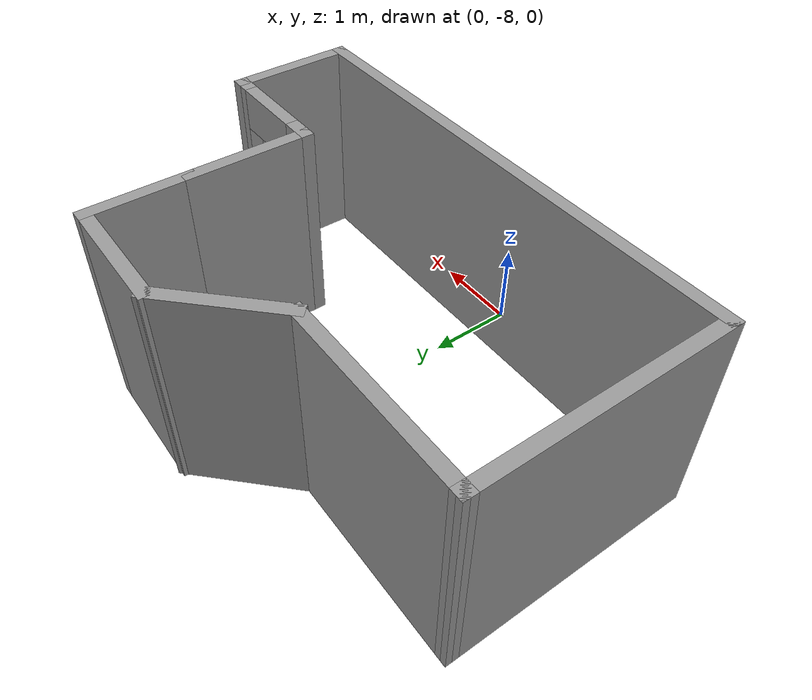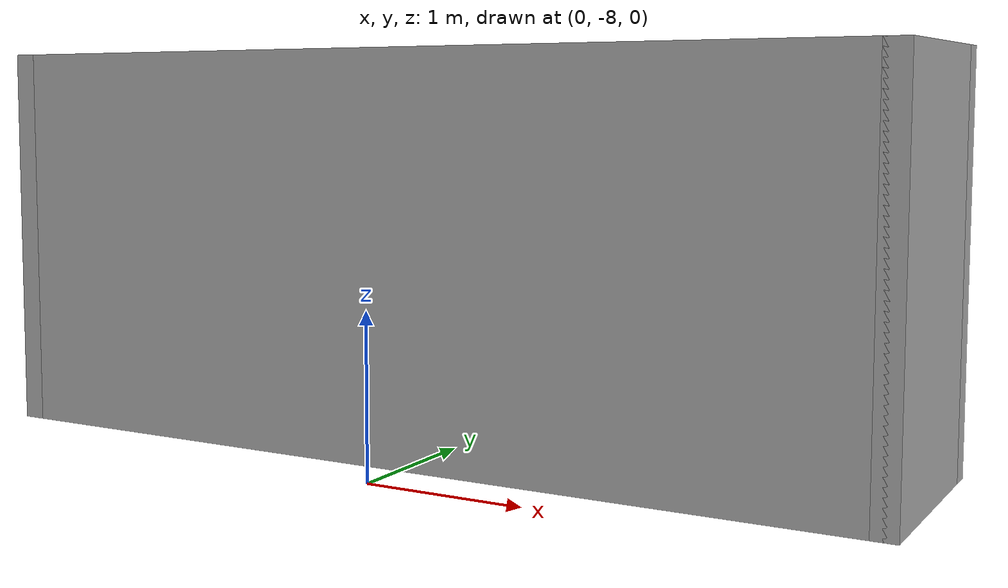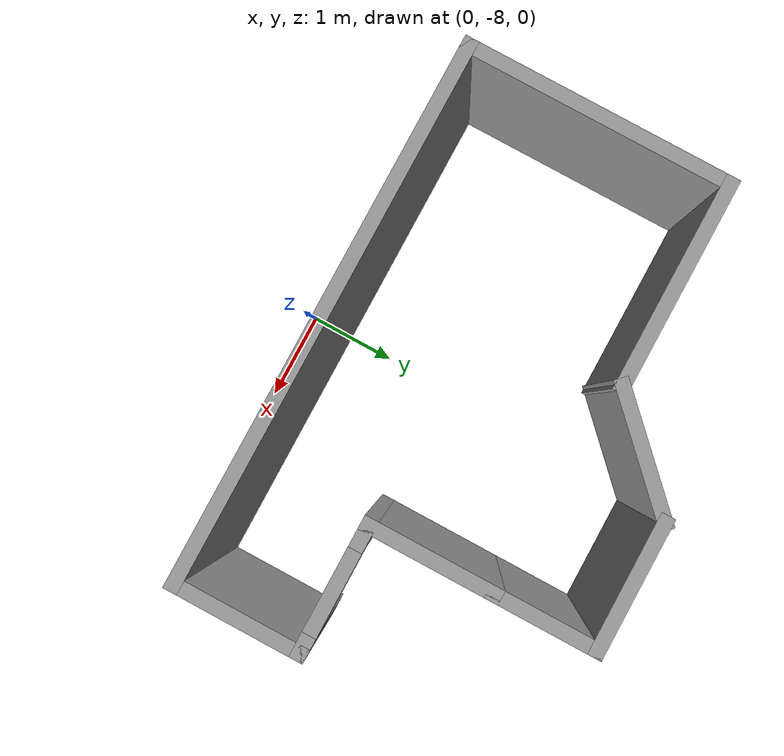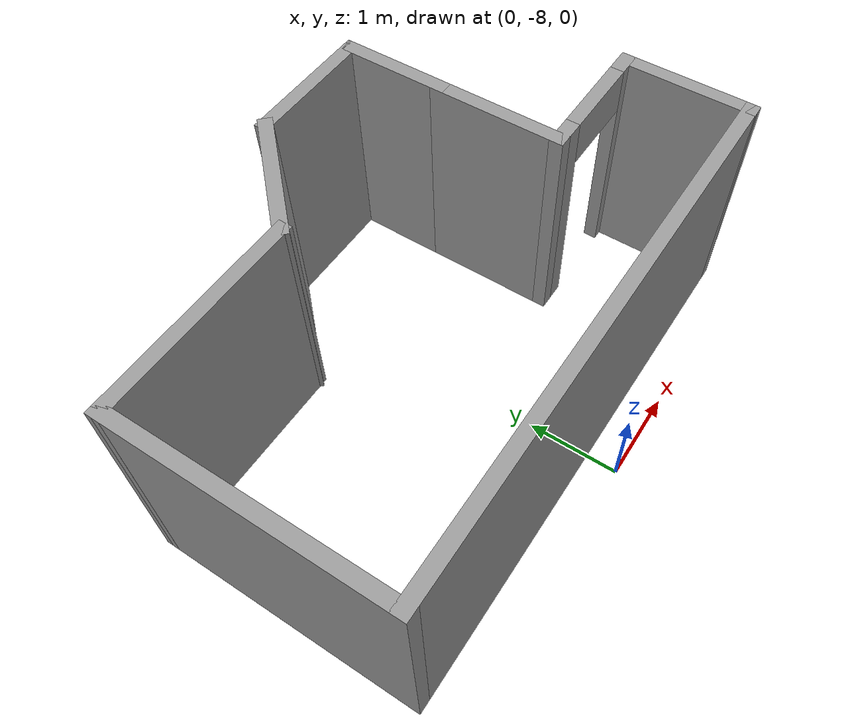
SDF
<?xml version='1.0'?>
<sdf version='1.6'>
  <model name='OddRoom-1door'>
    <pose frame=''>-0.068161 -5.67621 0 0 -0 0</pose>
    <link name='Wall_22'>
      <collision name='Wall_22_Collision'>
        <geometry>
          <box>
            <size>3 0.15 2.5</size>
          </box>
        </geometry>
        <pose frame=''>0 0 1.25 0 -0 0</pose>
      </collision>
      <visual name='Wall_22_Visual'>
        <pose frame=''>0 0 1.25 0 -0 0</pose>
        <geometry>
          <box>
            <size>3 0.15 2.5</size>
          </box>
        </geometry>
        <material>
          <script>
            <uri>file://media/materials/scripts/gazebo.material</uri>
            <name>Gazebo/Grey</name>
          </script>
          <ambient>1 1 1 1</ambient>
        </material>
        <meta>
          <layer>0</layer>
        </meta>
      </visual>
      <pose frame=''>-2.92492 -0.490533 0 0 -0 -1.5708</pose>
    </link>
    <link name='Wall_23'>
      <collision name='Wall_23_Collision'>
        <geometry>
          <box>
            <size>6 0.15 2.5</size>
          </box>
        </geometry>
        <pose frame=''>0 0 1.25 0 -0 0</pose>
      </collision>
      <visual name='Wall_23_Visual'>
        <pose frame=''>0 0 1.25 0 -0 0</pose>
        <geometry>
          <box>
            <size>6 0.15 2.5</size>
          </box>
        </geometry>
        <material>
          <script>
            <uri>file://media/materials/scripts/gazebo.material</uri>
            <name>Gazebo/Grey</name>
          </script>
          <ambient>1 1 1 1</ambient>
        </material>
        <meta>
          <layer>0</layer>
        </meta>
      </visual>
      <pose frame=''>7.8e-05 -1.91553 0 0 -0 0</pose>
    </link>
    <link name='Wall_24'>
      <collision name='Wall_24_Collision'>
        <geometry>
          <box>
            <size>1.5 0.15 2.5</size>
          </box>
        </geometry>
        <pose frame=''>0 0 1.25 0 -0 0</pose>
      </collision>
      <visual name='Wall_24_Visual'>
        <pose frame=''>0 0 1.25 0 -0 0</pose>
        <geometry>
          <box>
            <size>1.5 0.15 2.5</size>
          </box>
        </geometry>
        <material>
          <script>
            <uri>file://media/materials/scripts/gazebo.material</uri>
            <name>Gazebo/Grey</name>
          </script>
          <ambient>1 1 1 1</ambient>
        </material>
        <meta>
          <layer>0</layer>
        </meta>
      </visual>
      <pose frame=''>2.92508 -1.24053 0 0 -0 1.5708</pose>
    </link>
    <link name='Wall_25'>
      <pose frame=''>2.25008 -0.565533 0 0 -0 3.14159</pose>
      <visual name='Wall_25_Visual_0'>
        <pose frame=''>-0.618519 0 1.25 0 -0 0</pose>
        <geometry>
          <box>
            <size>0.262961 0.15 2.5</size>
          </box>
        </geometry>
        <material>
          <script>
            <uri>file://media/materials/scripts/gazebo.material</uri>
            <name>Gazebo/Grey</name>
          </script>
          <ambient>1 1 1 1</ambient>
        </material>
        <meta>
          <layer>0</layer>
        </meta>
      </visual>
      <collision name='Wall_25_Collision_0'>
        <geometry>
          <box>
            <size>0.262961 0.15 2.5</size>
          </box>
        </geometry>
        <pose frame=''>-0.618519 0 1.25 0 -0 0</pose>
      </collision>
      <visual name='Wall_25_Visual_1'>
        <pose frame=''>0.581481 0 1.25 0 -0 0</pose>
        <geometry>
          <box>
            <size>0.337039 0.15 2.5</size>
          </box>
        </geometry>
        <material>
          <script>
            <uri>file://media/materials/scripts/gazebo.material</uri>
            <name>Gazebo/Grey</name>
          </script>
          <ambient>1 1 1 1</ambient>
        </material>
        <meta>
          <layer>0</layer>
        </meta>
      </visual>
      <collision name='Wall_25_Collision_1'>
        <geometry>
          <box>
            <size>0.337039 0.15 2.5</size>
          </box>
        </geometry>
        <pose frame=''>0.581481 0 1.25 0 -0 0</pose>
      </collision>
      <visual name='Wall_25_Visual_2'>
        <pose frame=''>-0.037039 0 2.25 0 -0 0</pose>
        <geometry>
          <box>
            <size>0.9 0.15 0.5</size>
          </box>
        </geometry>
        <material>
          <script>
            <uri>file://media/materials/scripts/gazebo.material</uri>
            <name>Gazebo/Grey</name>
          </script>
          <ambient>1 1 1 1</ambient>
        </material>
        <meta>
          <layer>0</layer>
        </meta>
      </visual>
      <collision name='Wall_25_Collision_2'>
        <geometry>
          <box>
            <size>0.9 0.15 0.5</size>
          </box>
        </geometry>
        <pose frame=''>-0.037039 0 2.25 0 -0 0</pose>
      </collision>
    </link>
    <link name='Wall_26'>
      <collision name='Wall_26_Collision'>
        <geometry>
          <box>
            <size>1.5 0.15 2.5</size>
          </box>
        </geometry>
        <pose frame=''>0 0 1.25 0 -0 0</pose>
      </collision>
      <visual name='Wall_26_Visual'>
        <pose frame=''>0 0 1.25 0 -0 0</pose>
        <geometry>
          <box>
            <size>1.5 0.15 2.5</size>
          </box>
        </geometry>
        <material>
          <script>
            <uri>file://media/materials/scripts/gazebo.material</uri>
            <name>Gazebo/Grey</name>
          </script>
          <ambient>1 1 1 1</ambient>
        </material>
        <meta>
          <layer>0</layer>
        </meta>
      </visual>
      <pose frame=''>1.57508 0.109467 0 0 -0 1.5708</pose>
    </link>
    <link name='Wall_27'>
      <collision name='Wall_27_Collision'>
        <geometry>
          <box>
            <size>1.25 0.15 2.5</size>
          </box>
        </geometry>
        <pose frame=''>0 0 1.25 0 -0 0</pose>
      </collision>
      <visual name='Wall_27_Visual'>
        <pose frame=''>0 0 1.25 0 -0 0</pose>
        <geometry>
          <box>
            <size>1.25 0.15 2.5</size>
          </box>
        </geometry>
        <material>
          <script>
            <uri>file://media/materials/scripts/gazebo.material</uri>
            <name>Gazebo/Grey</name>
          </script>
          <ambient>1 1 1 1</ambient>
        </material>
        <meta>
          <layer>0</layer>
        </meta>
      </visual>
      <pose frame=''>1.57508 1.33447 0 0 -0 1.5708</pose>
    </link>
    <link name='Wall_28'>
      <collision name='Wall_28_Collision'>
        <geometry>
          <box>
            <size>1.5 0.15 2.5</size>
          </box>
        </geometry>
        <pose frame=''>0 0 1.25 0 -0 0</pose>
      </collision>
      <visual name='Wall_28_Visual'>
        <pose frame=''>0 0 1.25 0 -0 0</pose>
        <geometry>
          <box>
            <size>1.5 0.15 2.5</size>
          </box>
        </geometry>
        <material>
          <script>
            <uri>file://media/materials/scripts/gazebo.material</uri>
            <name>Gazebo/Grey</name>
          </script>
          <ambient>1 1 1 1</ambient>
        </material>
        <meta>
          <layer>0</layer>
        </meta>
      </visual>
      <pose frame=''>0.900078 1.88447 0 0 -0 3.14159</pose>
    </link>
    <link name='Wall_29'>
      <collision name='Wall_29_Collision'>
        <geometry>
          <box>
            <size>1.5 0.15 2.5</size>
          </box>
        </geometry>
        <pose frame=''>0 0 1.25 0 -0 0</pose>
      </collision>
      <visual name='Wall_29_Visual'>
        <pose frame=''>0 0 1.25 0 -0 0</pose>
        <geometry>
          <box>
            <size>1.5 0.15 2.5</size>
          </box>
        </geometry>
        <material>
          <script>
            <uri>file://media/materials/scripts/gazebo.material</uri>
            <name>Gazebo/Grey</name>
          </script>
          <ambient>1 1 1 1</ambient>
        </material>
        <meta>
          <layer>0</layer>
        </meta>
      </visual>
      <pose frame=''>-0.252219 1.40717 0 0 -0 -2.35619</pose>
    </link>
    <link name='Wall_31'>
      <collision name='Wall_31_Collision'>
        <geometry>
          <box>
            <size>2.34541 0.15 2.5</size>
          </box>
        </geometry>
        <pose frame=''>0 0 1.25 0 -0 0</pose>
      </collision>
      <visual name='Wall_31_Visual'>
        <pose frame=''>0 0 1.25 0 -0 0</pose>
        <geometry>
          <box>
            <size>2.34541 0.15 2.5</size>
          </box>
        </geometry>
        <material>
          <script>
            <uri>file://media/materials/scripts/gazebo.material</uri>
            <name>Gazebo/Grey</name>
          </script>
          <ambient>1 1 1 1</ambient>
        </material>
        <meta>
          <layer>0</layer>
        </meta>
      </visual>
      <pose frame=''>-1.82722 0.93217 0 0 -0 -0.002093</pose>
    </link>
    <static>1</static>
  </model>
</sdf>
